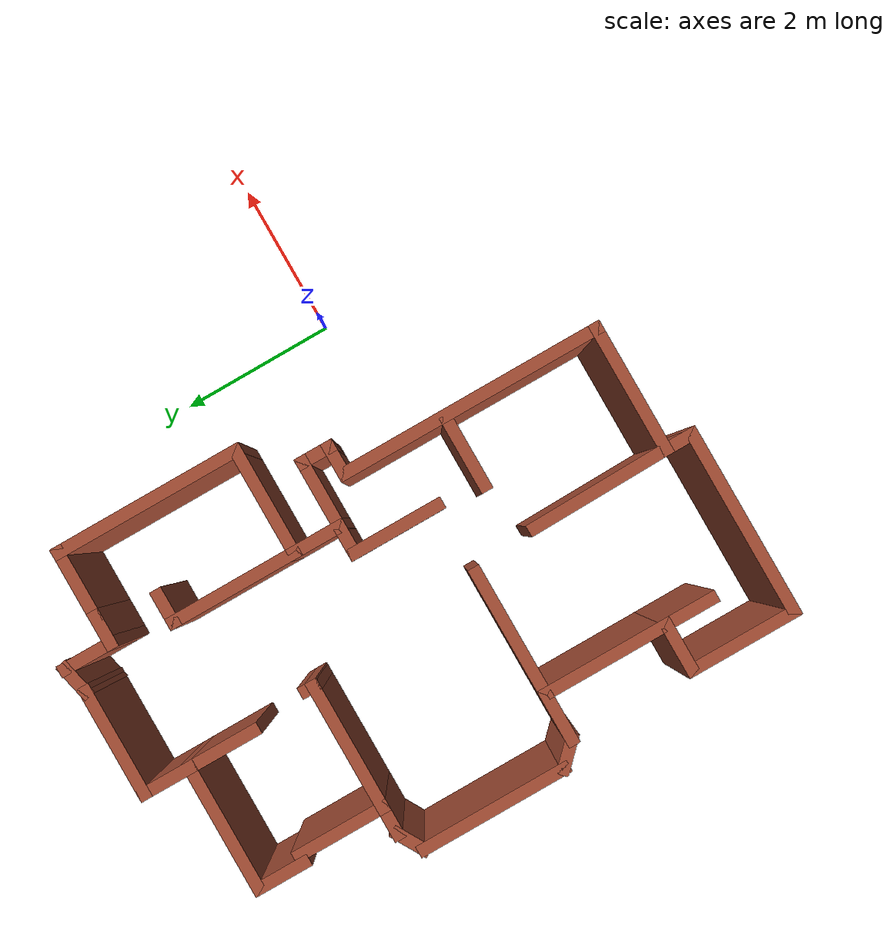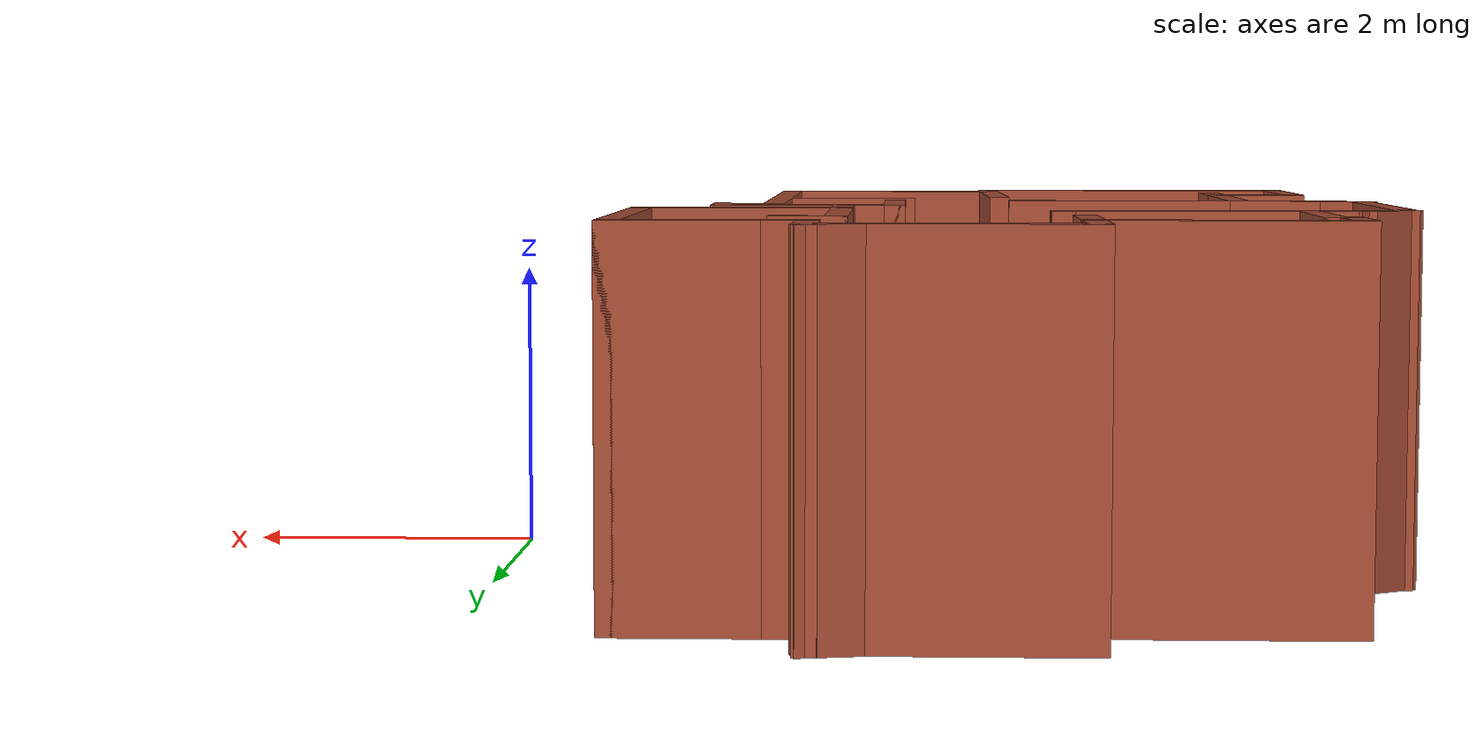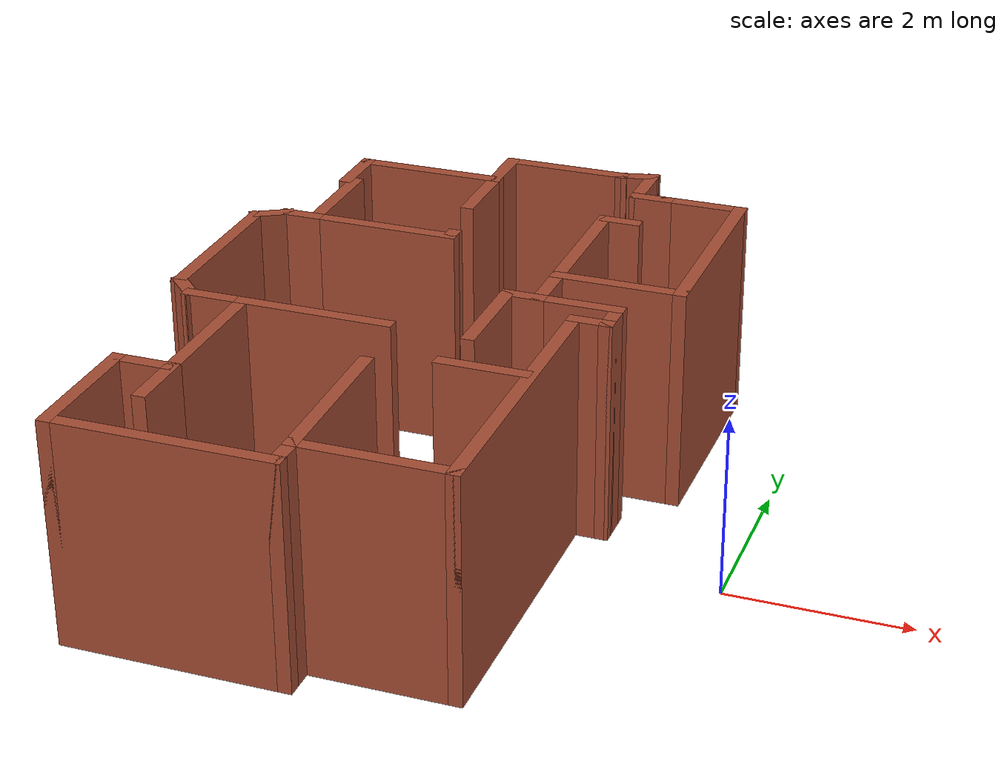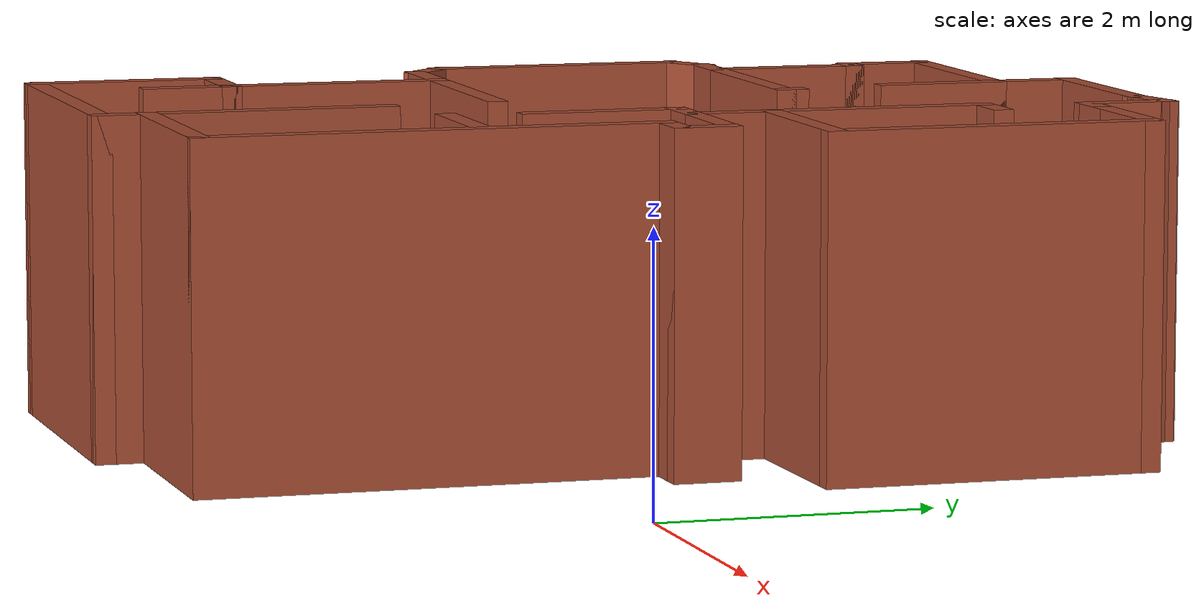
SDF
<?xml version='1.0'?>
<sdf version='1.6'>
  <model name='map_41'>
    <pose frame=''>-3.5129 0.768082 0 0 -0 0</pose>
    <link name='Wall_1'>
      <collision name='Wall_1_Collision'>
        <geometry>
          <box>
            <size>1.5 0.15 2.5</size>
          </box>
        </geometry>
        <pose frame=''>0 0 1.25 0 -0 0</pose>
      </collision>
      <visual name='Wall_1_Visual'>
        <pose frame=''>0 0 1.25 0 -0 0</pose>
        <geometry>
          <box>
            <size>1.5 0.15 2.5</size>
          </box>
        </geometry>
        <material>
          <script>
            <uri>file://media/materials/scripts/gazebo.material</uri>
            <name>Gazebo/Bricks</name>
          </script>
          <ambient>1 1 1 1</ambient>
        </material>
        <meta>
          <layer>0</layer>
        </meta>
      </visual>
      <pose frame=''>0.319898 3.71517 0 0 -0 3.14159</pose>
    </link>
    <link name='Wall_10'>
      <collision name='Wall_10_Collision'>
        <geometry>
          <box>
            <size>0.5 0.15 2.5</size>
          </box>
        </geometry>
        <pose frame=''>0 0 1.25 0 -0 0</pose>
      </collision>
      <visual name='Wall_10_Visual'>
        <pose frame=''>0 0 1.25 0 -0 0</pose>
        <geometry>
          <box>
            <size>0.5 0.15 2.5</size>
          </box>
        </geometry>
        <material>
          <script>
            <uri>file://media/materials/scripts/gazebo.material</uri>
            <name>Gazebo/Bricks</name>
          </script>
          <ambient>1 1 1 1</ambient>
        </material>
        <meta>
          <layer>0</layer>
        </meta>
      </visual>
      <pose frame=''>-2.38447 -0.733575 0 0 -0 -0.785398</pose>
    </link>
    <link name='Wall_11'>
      <collision name='Wall_11_Collision'>
        <geometry>
          <box>
            <size>0.75 0.15 2.5</size>
          </box>
        </geometry>
        <pose frame=''>0 0 1.25 0 -0 0</pose>
      </collision>
      <visual name='Wall_11_Visual'>
        <pose frame=''>0 0 1.25 0 -0 0</pose>
        <geometry>
          <box>
            <size>0.75 0.15 2.5</size>
          </box>
        </geometry>
        <material>
          <script>
            <uri>file://media/materials/scripts/gazebo.material</uri>
            <name>Gazebo/Bricks</name>
          </script>
          <ambient>1 1 1 1</ambient>
        </material>
        <meta>
          <layer>0</layer>
        </meta>
      </visual>
      <pose frame=''>-1.96072 -0.857319 0 0 -0 0</pose>
    </link>
    <link name='Wall_12'>
      <collision name='Wall_12_Collision'>
        <geometry>
          <box>
            <size>1.75 0.15 2.5</size>
          </box>
        </geometry>
        <pose frame=''>0 0 1.25 0 -0 0</pose>
      </collision>
      <visual name='Wall_12_Visual'>
        <pose frame=''>0 0 1.25 0 -0 0</pose>
        <geometry>
          <box>
            <size>1.75 0.15 2.5</size>
          </box>
        </geometry>
        <material>
          <script>
            <uri>file://media/materials/scripts/gazebo.material</uri>
            <name>Gazebo/Bricks</name>
          </script>
          <ambient>1 1 1 1</ambient>
        </material>
        <meta>
          <layer>0</layer>
        </meta>
      </visual>
      <pose frame=''>-1.66072 -1.65732 0 0 -0 -1.5708</pose>
    </link>
    <link name='Wall_13'>
      <collision name='Wall_13_Collision'>
        <geometry>
          <box>
            <size>0.75 0.15 2.5</size>
          </box>
        </geometry>
        <pose frame=''>0 0 1.25 0 -0 0</pose>
      </collision>
      <visual name='Wall_13_Visual'>
        <pose frame=''>0 0 1.25 0 -0 0</pose>
        <geometry>
          <box>
            <size>0.75 0.15 2.5</size>
          </box>
        </geometry>
        <material>
          <script>
            <uri>file://media/materials/scripts/gazebo.material</uri>
            <name>Gazebo/Bricks</name>
          </script>
          <ambient>1 1 1 1</ambient>
        </material>
        <meta>
          <layer>0</layer>
        </meta>
      </visual>
      <pose frame=''>-1.96072 -2.45732 0 0 -0 3.14159</pose>
    </link>
    <link name='Wall_14'>
      <collision name='Wall_14_Collision'>
        <geometry>
          <box>
            <size>1.5 0.15 2.5</size>
          </box>
        </geometry>
        <pose frame=''>0 0 1.25 0 -0 0</pose>
      </collision>
      <visual name='Wall_14_Visual'>
        <pose frame=''>0 0 1.25 0 -0 0</pose>
        <geometry>
          <box>
            <size>1.5 0.15 2.5</size>
          </box>
        </geometry>
        <material>
          <script>
            <uri>file://media/materials/scripts/gazebo.material</uri>
            <name>Gazebo/Bricks</name>
          </script>
          <ambient>1 1 1 1</ambient>
        </material>
        <meta>
          <layer>0</layer>
        </meta>
      </visual>
      <pose frame=''>-2.26072 -3.13232 0 0 -0 -1.5708</pose>
    </link>
    <link name='Wall_15'>
      <collision name='Wall_15_Collision'>
        <geometry>
          <box>
            <size>2.5 0.15 2.5</size>
          </box>
        </geometry>
        <pose frame=''>0 0 1.25 0 -0 0</pose>
      </collision>
      <visual name='Wall_15_Visual'>
        <pose frame=''>0 0 1.25 0 -0 0</pose>
        <geometry>
          <box>
            <size>2.5 0.15 2.5</size>
          </box>
        </geometry>
        <material>
          <script>
            <uri>file://media/materials/scripts/gazebo.material</uri>
            <name>Gazebo/Bricks</name>
          </script>
          <ambient>1 1 1 1</ambient>
        </material>
        <meta>
          <layer>0</layer>
        </meta>
      </visual>
      <pose frame=''>-1.08572 -3.80732 0 0 -0 0</pose>
    </link>
    <link name='Wall_16'>
      <collision name='Wall_16_Collision'>
        <geometry>
          <box>
            <size>0.5 0.15 2.5</size>
          </box>
        </geometry>
        <pose frame=''>0 0 1.25 0 -0 0</pose>
      </collision>
      <visual name='Wall_16_Visual'>
        <pose frame=''>0 0 1.25 0 -0 0</pose>
        <geometry>
          <box>
            <size>0.5 0.15 2.5</size>
          </box>
        </geometry>
        <material>
          <script>
            <uri>file://media/materials/scripts/gazebo.material</uri>
            <name>Gazebo/Bricks</name>
          </script>
          <ambient>1 1 1 1</ambient>
        </material>
        <meta>
          <layer>0</layer>
        </meta>
      </visual>
      <pose frame=''>0.089277 -3.63232 0 0 -0 1.5708</pose>
    </link>
    <link name='Wall_19'>
      <collision name='Wall_19_Collision'>
        <geometry>
          <box>
            <size>1.75 0.15 2.5</size>
          </box>
        </geometry>
        <pose frame=''>0 0 1.25 0 -0 0</pose>
      </collision>
      <visual name='Wall_19_Visual'>
        <pose frame=''>0 0 1.25 0 -0 0</pose>
        <geometry>
          <box>
            <size>1.75 0.15 2.5</size>
          </box>
        </geometry>
        <material>
          <script>
            <uri>file://media/materials/scripts/gazebo.material</uri>
            <name>Gazebo/Bricks</name>
          </script>
          <ambient>1 1 1 1</ambient>
        </material>
        <meta>
          <layer>0</layer>
        </meta>
      </visual>
      <pose frame=''>0.889277 -3.45732 0 0 -0 0</pose>
    </link>
    <link name='Wall_2'>
      <collision name='Wall_2_Collision'>
        <geometry>
          <box>
            <size>0.75 0.15 2.5</size>
          </box>
        </geometry>
        <pose frame=''>0 0 1.25 0 -0 0</pose>
      </collision>
      <visual name='Wall_2_Visual'>
        <pose frame=''>0 0 1.25 0 -0 0</pose>
        <geometry>
          <box>
            <size>0.75 0.15 2.5</size>
          </box>
        </geometry>
        <material>
          <script>
            <uri>file://media/materials/scripts/gazebo.material</uri>
            <name>Gazebo/Bricks</name>
          </script>
          <ambient>1 1 1 1</ambient>
        </material>
        <meta>
          <layer>0</layer>
        </meta>
      </visual>
      <pose frame=''>-0.355102 3.41517 0 0 -0 -1.5708</pose>
    </link>
    <link name='Wall_20'>
      <collision name='Wall_20_Collision'>
        <geometry>
          <box>
            <size>3.5 0.15 2.5</size>
          </box>
        </geometry>
        <pose frame=''>0 0 1.25 0 -0 0</pose>
      </collision>
      <visual name='Wall_20_Visual'>
        <pose frame=''>0 0 1.25 0 -0 0</pose>
        <geometry>
          <box>
            <size>3.5 0.15 2.5</size>
          </box>
        </geometry>
        <material>
          <script>
            <uri>file://media/materials/scripts/gazebo.material</uri>
            <name>Gazebo/Bricks</name>
          </script>
          <ambient>1 1 1 1</ambient>
        </material>
        <meta>
          <layer>0</layer>
        </meta>
      </visual>
      <pose frame=''>1.68928 -1.78232 0 0 -0 1.5708</pose>
    </link>
    <link name='Wall_21'>
      <collision name='Wall_21_Collision'>
        <geometry>
          <box>
            <size>0.5 0.15 2.5</size>
          </box>
        </geometry>
        <pose frame=''>0 0 1.25 0 -0 0</pose>
      </collision>
      <visual name='Wall_21_Visual'>
        <pose frame=''>0 0 1.25 0 -0 0</pose>
        <geometry>
          <box>
            <size>0.5 0.15 2.5</size>
          </box>
        </geometry>
        <material>
          <script>
            <uri>file://media/materials/scripts/gazebo.material</uri>
            <name>Gazebo/Bricks</name>
          </script>
          <ambient>1 1 1 1</ambient>
        </material>
        <meta>
          <layer>0</layer>
        </meta>
      </visual>
      <pose frame=''>1.86428 -0.107319 0 0 -0 0</pose>
    </link>
    <link name='Wall_22'>
      <collision name='Wall_22_Collision'>
        <geometry>
          <box>
            <size>0.5 0.15 2.5</size>
          </box>
        </geometry>
        <pose frame=''>0 0 1.25 0 -0 0</pose>
      </collision>
      <visual name='Wall_22_Visual'>
        <pose frame=''>0 0 1.25 0 -0 0</pose>
        <geometry>
          <box>
            <size>0.5 0.15 2.5</size>
          </box>
        </geometry>
        <material>
          <script>
            <uri>file://media/materials/scripts/gazebo.material</uri>
            <name>Gazebo/Bricks</name>
          </script>
          <ambient>1 1 1 1</ambient>
        </material>
        <meta>
          <layer>0</layer>
        </meta>
      </visual>
      <pose frame=''>2.03928 0.067681 0 0 -0 1.5708</pose>
    </link>
    <link name='Wall_24'>
      <collision name='Wall_24_Collision'>
        <geometry>
          <box>
            <size>1.75 0.15 2.5</size>
          </box>
        </geometry>
        <pose frame=''>0 0 1.25 0 -0 0</pose>
      </collision>
      <visual name='Wall_24_Visual'>
        <pose frame=''>0 0 1.25 0 -0 0</pose>
        <geometry>
          <box>
            <size>1.75 0.15 2.5</size>
          </box>
        </geometry>
        <material>
          <script>
            <uri>file://media/materials/scripts/gazebo.material</uri>
            <name>Gazebo/Bricks</name>
          </script>
          <ambient>1 1 1 1</ambient>
        </material>
        <meta>
          <layer>0</layer>
        </meta>
      </visual>
      <pose frame=''>-0.860723 -0.857319 0 0 -0 0</pose>
    </link>
    <link name='Wall_26'>
      <collision name='Wall_26_Collision'>
        <geometry>
          <box>
            <size>1.91378 0.15 2.5</size>
          </box>
        </geometry>
        <pose frame=''>0 0 1.25 0 -0 0</pose>
      </collision>
      <visual name='Wall_26_Visual'>
        <pose frame=''>0 0 1.25 0 -0 0</pose>
        <geometry>
          <box>
            <size>1.91378 0.15 2.5</size>
          </box>
        </geometry>
        <material>
          <script>
            <uri>file://media/materials/scripts/gazebo.material</uri>
            <name>Gazebo/Bricks</name>
          </script>
          <ambient>1 1 1 1</ambient>
        </material>
        <meta>
          <layer>0</layer>
        </meta>
      </visual>
      <pose frame=''>0.0726 -2.57559 0 0 -0 -1.55188</pose>
    </link>
    <link name='Wall_28'>
      <collision name='Wall_28_Collision'>
        <geometry>
          <box>
            <size>1 0.15 2.5</size>
          </box>
        </geometry>
        <pose frame=''>0 0 1.25 0 -0 0</pose>
      </collision>
      <visual name='Wall_28_Visual'>
        <pose frame=''>0 0 1.25 0 -0 0</pose>
        <geometry>
          <box>
            <size>1 0.15 2.5</size>
          </box>
        </geometry>
        <material>
          <script>
            <uri>file://media/materials/scripts/gazebo.material</uri>
            <name>Gazebo/Bricks</name>
          </script>
          <ambient>1 1 1 1</ambient>
        </material>
        <meta>
          <layer>0</layer>
        </meta>
      </visual>
      <pose frame=''>1.19507 -1.44258 0 0 -0 0</pose>
    </link>
    <link name='Wall_3'>
      <collision name='Wall_3_Collision'>
        <geometry>
          <box>
            <size>1.75 0.15 2.5</size>
          </box>
        </geometry>
        <pose frame=''>0 0 1.25 0 -0 0</pose>
      </collision>
      <visual name='Wall_3_Visual'>
        <pose frame=''>0 0 1.25 0 -0 0</pose>
        <geometry>
          <box>
            <size>1.75 0.15 2.5</size>
          </box>
        </geometry>
        <material>
          <script>
            <uri>file://media/materials/scripts/gazebo.material</uri>
            <name>Gazebo/Bricks</name>
          </script>
          <ambient>1 1 1 1</ambient>
        </material>
        <meta>
          <layer>0</layer>
        </meta>
      </visual>
      <pose frame=''>-1.1551 3.11517 0 0 -0 3.14159</pose>
    </link>
    <link name='Wall_30'>
      <collision name='Wall_30_Collision'>
        <geometry>
          <box>
            <size>0.75 0.15 2.5</size>
          </box>
        </geometry>
        <pose frame=''>0 0 1.25 0 -0 0</pose>
      </collision>
      <visual name='Wall_30_Visual'>
        <pose frame=''>0 0 1.25 0 -0 0</pose>
        <geometry>
          <box>
            <size>0.75 0.15 2.5</size>
          </box>
        </geometry>
        <material>
          <script>
            <uri>file://media/materials/scripts/gazebo.material</uri>
            <name>Gazebo/Bricks</name>
          </script>
          <ambient>1 1 1 1</ambient>
        </material>
        <meta>
          <layer>0</layer>
        </meta>
      </visual>
      <pose frame=''>-1.66072 -2.75732 0 0 -0 -1.5708</pose>
    </link>
    <link name='Wall_32'>
      <collision name='Wall_32_Collision'>
        <geometry>
          <box>
            <size>1 0.15 2.5</size>
          </box>
        </geometry>
        <pose frame=''>0 0 1.25 0 -0 0</pose>
      </collision>
      <visual name='Wall_32_Visual'>
        <pose frame=''>0 0 1.25 0 -0 0</pose>
        <geometry>
          <box>
            <size>1 0.15 2.5</size>
          </box>
        </geometry>
        <material>
          <script>
            <uri>file://media/materials/scripts/gazebo.material</uri>
            <name>Gazebo/Bricks</name>
          </script>
          <ambient>1 1 1 1</ambient>
        </material>
        <meta>
          <layer>0</layer>
        </meta>
      </visual>
      <pose frame=''>1.61428 0.242681 0 0 -0 3.14159</pose>
    </link>
    <link name='Wall_35'>
      <collision name='Wall_35_Collision'>
        <geometry>
          <box>
            <size>0.75 0.15 2.5</size>
          </box>
        </geometry>
        <pose frame=''>0 0 1.25 0 -0 0</pose>
      </collision>
      <visual name='Wall_35_Visual'>
        <pose frame=''>0 0 1.25 0 -0 0</pose>
        <geometry>
          <box>
            <size>0.75 0.15 2.5</size>
          </box>
        </geometry>
        <material>
          <script>
            <uri>file://media/materials/scripts/gazebo.material</uri>
            <name>Gazebo/Bricks</name>
          </script>
          <ambient>1 1 1 1</ambient>
        </material>
        <meta>
          <layer>0</layer>
        </meta>
      </visual>
      <pose frame=''>1.18928 0.542681 0 0 -0 1.5708</pose>
    </link>
    <link name='Wall_36'>
      <collision name='Wall_36_Collision'>
        <geometry>
          <box>
            <size>1.5 0.15 2.5</size>
          </box>
        </geometry>
        <pose frame=''>0 0 1.25 0 -0 0</pose>
      </collision>
      <visual name='Wall_36_Visual'>
        <pose frame=''>0 0 1.25 0 -0 0</pose>
        <geometry>
          <box>
            <size>1.5 0.15 2.5</size>
          </box>
        </geometry>
        <material>
          <script>
            <uri>file://media/materials/scripts/gazebo.material</uri>
            <name>Gazebo/Bricks</name>
          </script>
          <ambient>1 1 1 1</ambient>
        </material>
        <meta>
          <layer>0</layer>
        </meta>
      </visual>
      <pose frame=''>1.86428 0.842681 0 0 -0 0</pose>
    </link>
    <link name='Wall_37'>
      <collision name='Wall_37_Collision'>
        <geometry>
          <box>
            <size>2.5 0.15 2.5</size>
          </box>
        </geometry>
        <pose frame=''>0 0 1.25 0 -0 0</pose>
      </collision>
      <visual name='Wall_37_Visual'>
        <pose frame=''>0 0 1.25 0 -0 0</pose>
        <geometry>
          <box>
            <size>2.5 0.15 2.5</size>
          </box>
        </geometry>
        <material>
          <script>
            <uri>file://media/materials/scripts/gazebo.material</uri>
            <name>Gazebo/Bricks</name>
          </script>
          <ambient>1 1 1 1</ambient>
        </material>
        <meta>
          <layer>0</layer>
        </meta>
      </visual>
      <pose frame=''>2.53928 2.01768 0 0 -0 1.5708</pose>
    </link>
    <link name='Wall_4'>
      <collision name='Wall_4_Collision'>
        <geometry>
          <box>
            <size>0.75 0.15 2.5</size>
          </box>
        </geometry>
        <pose frame=''>0 0 1.25 0 -0 0</pose>
      </collision>
      <visual name='Wall_4_Visual'>
        <pose frame=''>0 0 1.25 0 -0 0</pose>
        <geometry>
          <box>
            <size>0.75 0.15 2.5</size>
          </box>
        </geometry>
        <material>
          <script>
            <uri>file://media/materials/scripts/gazebo.material</uri>
            <name>Gazebo/Bricks</name>
          </script>
          <ambient>1 1 1 1</ambient>
        </material>
        <meta>
          <layer>0</layer>
        </meta>
      </visual>
      <pose frame=''>-1.9551 2.81517 0 0 -0 -1.5708</pose>
    </link>
    <link name='Wall_40'>
      <collision name='Wall_40_Collision'>
        <geometry>
          <box>
            <size>1 0.15 2.5</size>
          </box>
        </geometry>
        <pose frame=''>0 0 1.25 0 -0 0</pose>
      </collision>
      <visual name='Wall_40_Visual'>
        <pose frame=''>0 0 1.25 0 -0 0</pose>
        <geometry>
          <box>
            <size>1 0.15 2.5</size>
          </box>
        </geometry>
        <material>
          <script>
            <uri>file://media/materials/scripts/gazebo.material</uri>
            <name>Gazebo/Bricks</name>
          </script>
          <ambient>1 1 1 1</ambient>
        </material>
        <meta>
          <layer>0</layer>
        </meta>
      </visual>
      <pose frame=''>2.11428 3.19268 0 0 -0 3.14159</pose>
    </link>
    <link name='Wall_42'>
      <collision name='Wall_42_Collision'>
        <geometry>
          <box>
            <size>0.5 0.15 2.5</size>
          </box>
        </geometry>
        <pose frame=''>0 0 1.25 0 -0 0</pose>
      </collision>
      <visual name='Wall_42_Visual'>
        <pose frame=''>0 0 1.25 0 -0 0</pose>
        <geometry>
          <box>
            <size>0.5 0.15 2.5</size>
          </box>
        </geometry>
        <material>
          <script>
            <uri>file://media/materials/scripts/gazebo.material</uri>
            <name>Gazebo/Bricks</name>
          </script>
          <ambient>1 1 1 1</ambient>
        </material>
        <meta>
          <layer>0</layer>
        </meta>
      </visual>
      <pose frame=''>1.51428 3.19268 0 0 -0 3.14159</pose>
    </link>
    <link name='Wall_45'>
      <collision name='Wall_45_Collision'>
        <geometry>
          <box>
            <size>0.75 0.15 2.5</size>
          </box>
        </geometry>
        <pose frame=''>0 0 1.25 0 -0 0</pose>
      </collision>
      <visual name='Wall_45_Visual'>
        <pose frame=''>0 0 1.25 0 -0 0</pose>
        <geometry>
          <box>
            <size>0.75 0.15 2.5</size>
          </box>
        </geometry>
        <material>
          <script>
            <uri>file://media/materials/scripts/gazebo.material</uri>
            <name>Gazebo/Bricks</name>
          </script>
          <ambient>1 1 1 1</ambient>
        </material>
        <meta>
          <layer>0</layer>
        </meta>
      </visual>
      <pose frame=''>1.33928 3.49268 0 0 -0 1.5708</pose>
    </link>
    <link name='Wall_46'>
      <collision name='Wall_46_Collision'>
        <geometry>
          <box>
            <size>0.502994 0.15 2.5</size>
          </box>
        </geometry>
        <pose frame=''>0 0 1.25 0 -0 0</pose>
      </collision>
      <visual name='Wall_46_Visual'>
        <pose frame=''>0 0 1.25 0 -0 0</pose>
        <geometry>
          <box>
            <size>0.502994 0.15 2.5</size>
          </box>
        </geometry>
        <material>
          <script>
            <uri>file://media/materials/scripts/gazebo.material</uri>
            <name>Gazebo/Bricks</name>
          </script>
          <ambient>1 1 1 1</ambient>
        </material>
        <meta>
          <layer>0</layer>
        </meta>
      </visual>
      <pose frame=''>1.16709 3.75393 0 0 -0 -2.9202</pose>
    </link>
    <link name='Wall_5'>
      <collision name='Wall_5_Collision'>
        <geometry>
          <box>
            <size>0.25 0.15 2.5</size>
          </box>
        </geometry>
        <pose frame=''>0 0 1.25 0 -0 0</pose>
      </collision>
      <visual name='Wall_5_Visual'>
        <pose frame=''>0 0 1.25 0 -0 0</pose>
        <geometry>
          <box>
            <size>0.25 0.15 2.5</size>
          </box>
        </geometry>
        <material>
          <script>
            <uri>file://media/materials/scripts/gazebo.material</uri>
            <name>Gazebo/Bricks</name>
          </script>
          <ambient>1 1 1 1</ambient>
        </material>
        <meta>
          <layer>0</layer>
        </meta>
      </visual>
      <pose frame=''>-1.9051 2.51517 0 0 -0 0</pose>
    </link>
    <link name='Wall_52'>
      <collision name='Wall_52_Collision'>
        <geometry>
          <box>
            <size>1 0.15 2.5</size>
          </box>
        </geometry>
        <pose frame=''>0 0 1.25 0 -0 0</pose>
      </collision>
      <visual name='Wall_52_Visual'>
        <pose frame=''>0 0 1.25 0 -0 0</pose>
        <geometry>
          <box>
            <size>1 0.15 2.5</size>
          </box>
        </geometry>
        <material>
          <script>
            <uri>file://media/materials/scripts/gazebo.material</uri>
            <name>Gazebo/Bricks</name>
          </script>
          <ambient>1 1 1 1</ambient>
        </material>
        <meta>
          <layer>0</layer>
        </meta>
      </visual>
      <pose frame=''>-0.355102 2.69017 0 0 -0 -1.5708</pose>
    </link>
    <link name='Wall_54'>
      <collision name='Wall_54_Collision'>
        <geometry>
          <box>
            <size>1.75 0.15 2.5</size>
          </box>
        </geometry>
        <pose frame=''>0 0 1.25 0 -0 0</pose>
      </collision>
      <visual name='Wall_54_Visual'>
        <pose frame=''>0 0 1.25 0 -0 0</pose>
        <geometry>
          <box>
            <size>1.75 0.15 2.5</size>
          </box>
        </geometry>
        <material>
          <script>
            <uri>file://media/materials/scripts/gazebo.material</uri>
            <name>Gazebo/Bricks</name>
          </script>
          <ambient>1 1 1 1</ambient>
        </material>
        <meta>
          <layer>0</layer>
        </meta>
      </visual>
      <pose frame=''>-1.0551 1.41517 0 0 -0 0</pose>
    </link>
    <link name='Wall_55'>
      <collision name='Wall_55_Collision'>
        <geometry>
          <box>
            <size>0.25 0.15 2.5</size>
          </box>
        </geometry>
        <pose frame=''>0 0 1.25 0 -0 0</pose>
      </collision>
      <visual name='Wall_55_Visual'>
        <pose frame=''>0 0 1.25 0 -0 0</pose>
        <geometry>
          <box>
            <size>0.25 0.15 2.5</size>
          </box>
        </geometry>
        <material>
          <script>
            <uri>file://media/materials/scripts/gazebo.material</uri>
            <name>Gazebo/Bricks</name>
          </script>
          <ambient>1 1 1 1</ambient>
        </material>
        <meta>
          <layer>0</layer>
        </meta>
      </visual>
      <pose frame=''>-0.255102 1.46517 0 0 -0 1.5708</pose>
    </link>
    <link name='Wall_58'>
      <collision name='Wall_58_Collision'>
        <geometry>
          <box>
            <size>0.5 0.15 2.5</size>
          </box>
        </geometry>
        <pose frame=''>0 0 1.25 0 -0 0</pose>
      </collision>
      <visual name='Wall_58_Visual'>
        <pose frame=''>0 0 1.25 0 -0 0</pose>
        <geometry>
          <box>
            <size>0.5 0.15 2.5</size>
          </box>
        </geometry>
        <material>
          <script>
            <uri>file://media/materials/scripts/gazebo.material</uri>
            <name>Gazebo/Bricks</name>
          </script>
          <ambient>1 1 1 1</ambient>
        </material>
        <meta>
          <layer>0</layer>
        </meta>
      </visual>
      <pose frame=''>1.01428 0.242681 0 0 -0 3.14159</pose>
    </link>
    <link name='Wall_59'>
      <collision name='Wall_59_Collision'>
        <geometry>
          <box>
            <size>1.25 0.15 2.5</size>
          </box>
        </geometry>
        <pose frame=''>0 0 1.25 0 -0 0</pose>
      </collision>
      <visual name='Wall_59_Visual'>
        <pose frame=''>0 0 1.25 0 -0 0</pose>
        <geometry>
          <box>
            <size>1.25 0.15 2.5</size>
          </box>
        </geometry>
        <material>
          <script>
            <uri>file://media/materials/scripts/gazebo.material</uri>
            <name>Gazebo/Bricks</name>
          </script>
          <ambient>1 1 1 1</ambient>
        </material>
        <meta>
          <layer>0</layer>
        </meta>
      </visual>
      <pose frame=''>0.839277 -0.307319 0 0 -0 -1.5708</pose>
    </link>
    <link name='Wall_6'>
      <collision name='Wall_6_Collision'>
        <geometry>
          <box>
            <size>1.25 0.15 2.5</size>
          </box>
        </geometry>
        <pose frame=''>0 0 1.25 0 -0 0</pose>
      </collision>
      <visual name='Wall_6_Visual'>
        <pose frame=''>0 0 1.25 0 -0 0</pose>
        <geometry>
          <box>
            <size>1.25 0.15 2.5</size>
          </box>
        </geometry>
        <material>
          <script>
            <uri>file://media/materials/scripts/gazebo.material</uri>
            <name>Gazebo/Bricks</name>
          </script>
          <ambient>1 1 1 1</ambient>
        </material>
        <meta>
          <layer>0</layer>
        </meta>
      </visual>
      <pose frame=''>-1.8551 1.96517 0 0 -0 -1.5708</pose>
    </link>
    <link name='Wall_61'>
      <collision name='Wall_61_Collision'>
        <geometry>
          <box>
            <size>1.75 0.15 2.5</size>
          </box>
        </geometry>
        <pose frame=''>0 0 1.25 0 -0 0</pose>
      </collision>
      <visual name='Wall_61_Visual'>
        <pose frame=''>0 0 1.25 0 -0 0</pose>
        <geometry>
          <box>
            <size>1.75 0.15 2.5</size>
          </box>
        </geometry>
        <material>
          <script>
            <uri>file://media/materials/scripts/gazebo.material</uri>
            <name>Gazebo/Bricks</name>
          </script>
          <ambient>1 1 1 1</ambient>
        </material>
        <meta>
          <layer>0</layer>
        </meta>
      </visual>
      <pose frame=''>1.18928 1.64268 0 0 -0 1.5708</pose>
    </link>
    <link name='Wall_62'>
      <collision name='Wall_62_Collision'>
        <geometry>
          <box>
            <size>0.5 0.15 2.5</size>
          </box>
        </geometry>
        <pose frame=''>0 0 1.25 0 -0 0</pose>
      </collision>
      <visual name='Wall_62_Visual'>
        <pose frame=''>0 0 1.25 0 -0 0</pose>
        <geometry>
          <box>
            <size>0.5 0.15 2.5</size>
          </box>
        </geometry>
        <material>
          <script>
            <uri>file://media/materials/scripts/gazebo.material</uri>
            <name>Gazebo/Bricks</name>
          </script>
          <ambient>1 1 1 1</ambient>
        </material>
        <meta>
          <layer>0</layer>
        </meta>
      </visual>
      <pose frame=''>1.36428 2.44268 0 0 -0 0</pose>
    </link>
    <link name='Wall_7'>
      <collision name='Wall_7_Collision'>
        <geometry>
          <box>
            <size>0.5 0.15 2.5</size>
          </box>
        </geometry>
        <pose frame=''>0 0 1.25 0 -0 0</pose>
      </collision>
      <visual name='Wall_7_Visual'>
        <pose frame=''>0 0 1.25 0 -0 0</pose>
        <geometry>
          <box>
            <size>0.5 0.15 2.5</size>
          </box>
        </geometry>
        <material>
          <script>
            <uri>file://media/materials/scripts/gazebo.material</uri>
            <name>Gazebo/Bricks</name>
          </script>
          <ambient>1 1 1 1</ambient>
        </material>
        <meta>
          <layer>0</layer>
        </meta>
      </visual>
      <pose frame=''>-2.0301 1.41517 0 0 -0 3.14159</pose>
    </link>
    <link name='Wall_8'>
      <collision name='Wall_8_Collision'>
        <geometry>
          <box>
            <size>0.5 0.15 2.5</size>
          </box>
        </geometry>
        <pose frame=''>0 0 1.25 0 -0 0</pose>
      </collision>
      <visual name='Wall_8_Visual'>
        <pose frame=''>0 0 1.25 0 -0 0</pose>
        <geometry>
          <box>
            <size>0.5 0.15 2.5</size>
          </box>
        </geometry>
        <material>
          <script>
            <uri>file://media/materials/scripts/gazebo.material</uri>
            <name>Gazebo/Bricks</name>
          </script>
          <ambient>1 1 1 1</ambient>
        </material>
        <meta>
          <layer>0</layer>
        </meta>
      </visual>
      <pose frame=''>-2.35666 1.32767 0 0 -0 -2.61799</pose>
    </link>
    <link name='Wall_9'>
      <collision name='Wall_9_Collision'>
        <geometry>
          <box>
            <size>2 0.15 2.5</size>
          </box>
        </geometry>
        <pose frame=''>0 0 1.25 0 -0 0</pose>
      </collision>
      <visual name='Wall_9_Visual'>
        <pose frame=''>0 0 1.25 0 -0 0</pose>
        <geometry>
          <box>
            <size>2 0.15 2.5</size>
          </box>
        </geometry>
        <material>
          <script>
            <uri>file://media/materials/scripts/gazebo.material</uri>
            <name>Gazebo/Bricks</name>
          </script>
          <ambient>1 1 1 1</ambient>
        </material>
        <meta>
          <layer>0</layer>
        </meta>
      </visual>
      <pose frame=''>-2.50821 0.315168 0 0 -0 -1.5708</pose>
    </link>
    <static>1</static>
  </model>
</sdf>
